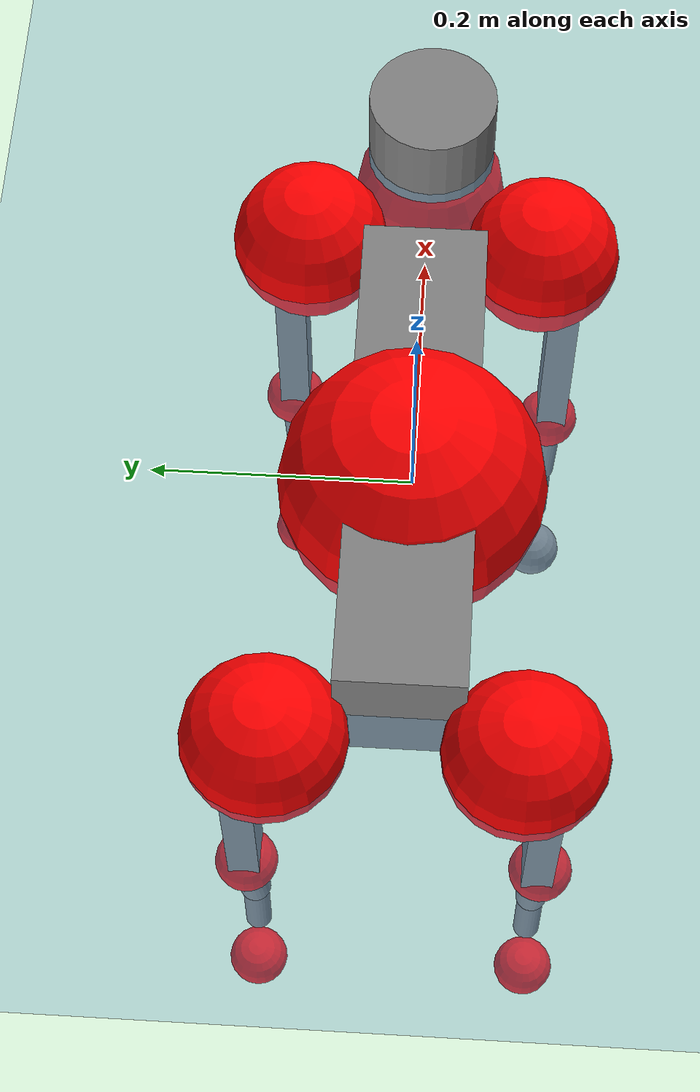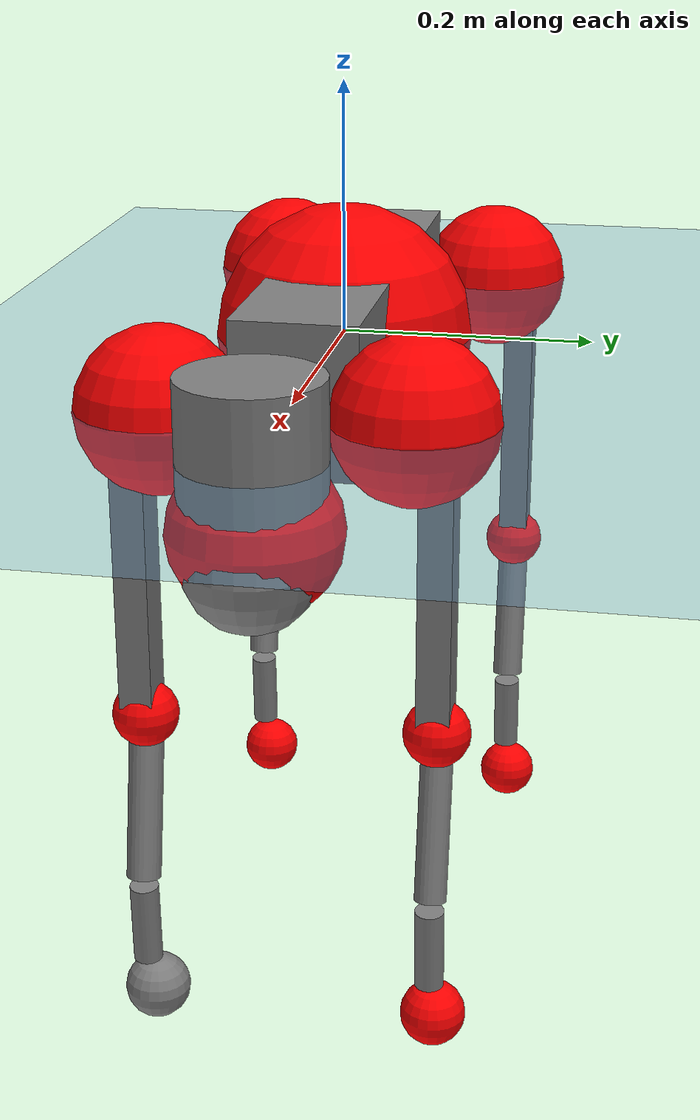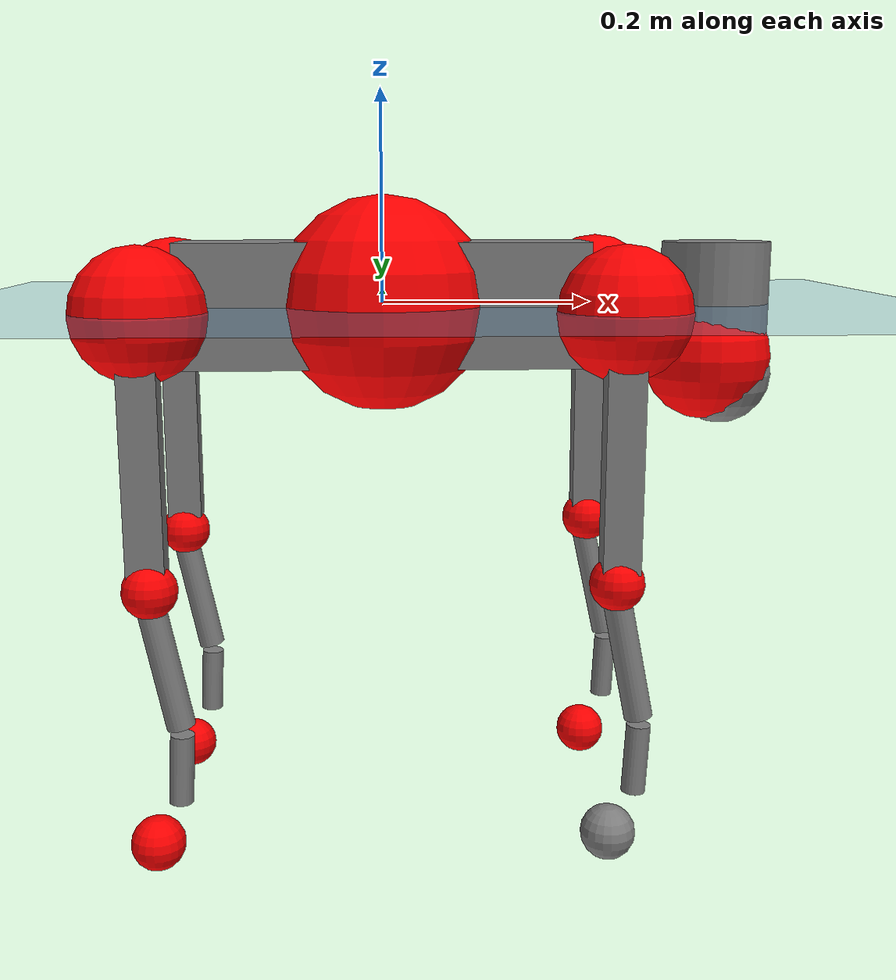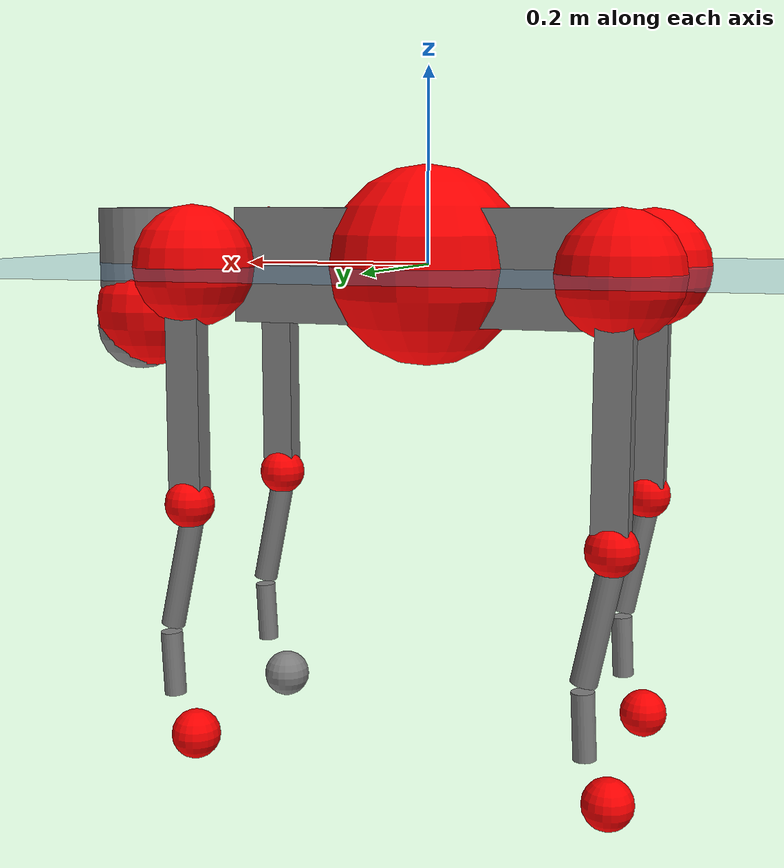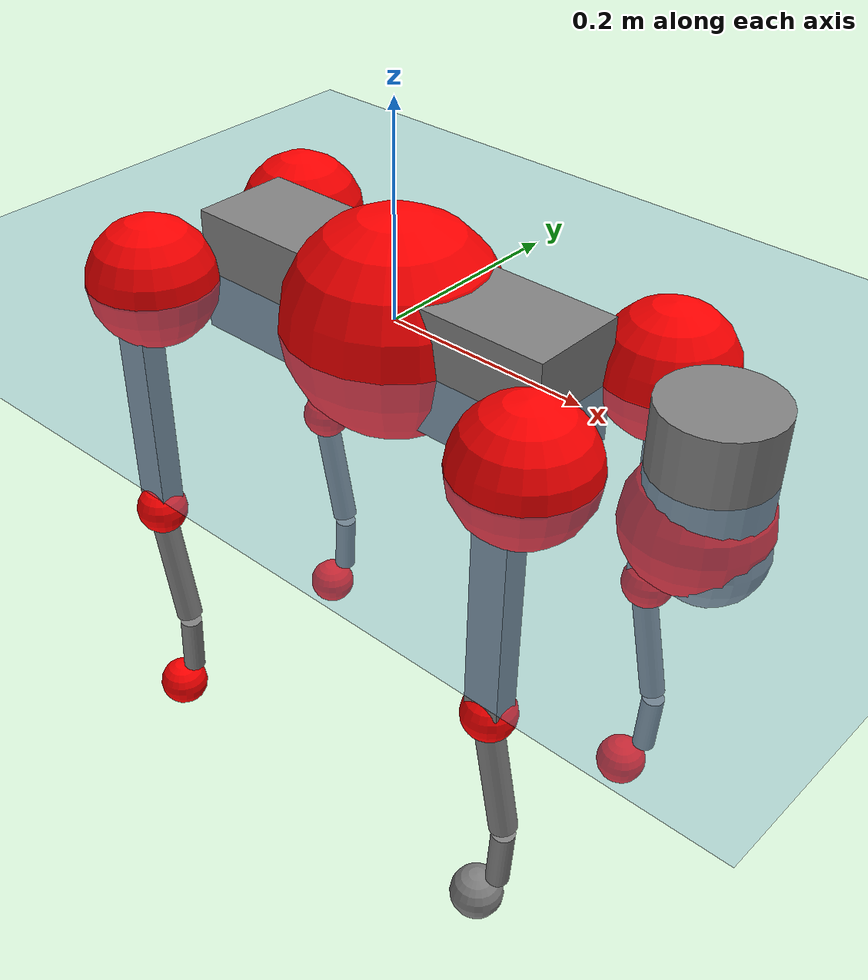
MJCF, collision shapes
<mujoco model="go2">
  <compiler angle="radian" assetdir="assets" balanceinertia="true" inertiafromgeom="false"/>

  <option timestep="0.005" density="1.2" viscosity="2e-05"/>

  <size nkey="1"/>

  <visual>
    <quality shadowsize="8192"/>
    <map shadowclip="0.5"/>
  </visual>

  <default>
    <default class="/">
      <geom contype="0" conaffinity="0" group="1" solref="-1000 -80"/>
      <site size="0.01 0.005 0.005" group="5"/>
      <general forcelimited="true" biastype="affine" gainprm="20" biasprm="0 -20 -0.5"/>
      <default class="go2">
        <joint armature="0.01" damping="0.01" frictionloss="0.2"/>
        <geom condim="1" margin="0.001"/>
        <default class="visual">
          <geom type="mesh" group="2"/>
        </default>
        <default class="collision">
          <geom group="3"/>
          <default class="foot">
            <geom size="0.022 0 0" condim="6" priority="1" friction="0.8 0.02 0.01" solimp="0.015 1 0.022"/>
          </default>
        </default>
        <default class="reward_collision_sphere">
          <geom group="5" rgba="1 0 0 1"/>
        </default>
      </default>
    </default>
  </default>

  <asset>
    <texture type="skybox" colorspace="auto" name="//unnamed_texture_0" builtin="gradient" rgb1="0.95 0.95 0.95" rgb2="0.95 0.95 0.95" width="100" height="600"/>
    <texture type="2d" colorspace="auto" name="texplane" builtin="checker" rgb1="0.345 0.575 0.748" rgb2="0.345 0.575 0.748" markrgb="1 1 1" width="512" height="512"/>
    <material name="MatPlane" class="/" texture="texplane" texuniform="true" texrepeat="2 2" specular="0.9"/>
    <material name="metal" class="/" rgba="0.9 0.95 0.95 1"/>
    <material name="black" class="/" rgba="0 0 0 1"/>
    <material name="white" class="/"/>
    <material name="gray" class="/" rgba="0.671705 0.692426 0.77427 1"/>
    <mesh name="base_0" class="/" file="base_0.obj"/>
    <mesh name="base_1" class="/" file="base_1.obj"/>
    <mesh name="base_2" class="/" file="base_2.obj"/>
    <mesh name="base_3" class="/" file="base_3.obj"/>
    <mesh name="base_4" class="/" file="base_4.obj"/>
    <mesh name="hip_0" class="/" file="hip_0.obj"/>
    <mesh name="hip_1" class="/" file="hip_1.obj"/>
    <mesh name="thigh_0" class="/" file="thigh_0.obj"/>
    <mesh name="thigh_1" class="/" file="thigh_1.obj"/>
    <mesh name="thigh_mirror_0" class="/" file="thigh_mirror_0.obj"/>
    <mesh name="thigh_mirror_1" class="/" file="thigh_mirror_1.obj"/>
    <mesh name="calf_0" class="/" file="calf_0.obj"/>
    <mesh name="calf_1" class="/" file="calf_1.obj"/>
    <mesh name="calf_mirror_0" class="/" file="calf_mirror_0.obj"/>
    <mesh name="calf_mirror_1" class="/" file="calf_mirror_1.obj"/>
    <mesh name="foot" class="/" file="foot.obj"/>
  </asset>

  <worldbody>
    <geom name="floor" class="/" size="100 100 0.125" type="plane" group="0" material="MatPlane"/>
    <light name="toplight_shadow" class="/" pos="0 0 5" dir="0.0990148 0.0990148 -0.990148" type="directional" ambient="0.04 0.04 0.04" diffuse="0.55 0.55 0.55" specular="0.12 0.12 0.12"/>
    <light name="toplight_fill" class="/" pos="0 0 5" dir="0.0990148 0.0990148 -0.990148" type="directional" castshadow="false" ambient="0.04 0.04 0.04" diffuse="0.3 0.3 0.3" specular="0.08 0.08 0.08"/>
    <body name="trunk" childclass="go2" pos="0.000867779 8.38414e-06 -0.000621595" quat="1 -0.000490788 -0.00039111 -6.13572e-05">
      <inertial pos="0.023974 0.00138797 -0.00394533" quat="-0.00801779 0.715947 -0.0118062 0.698009" mass="7.88368" diaginertia="0.199877 0.0340382 0.0511626"/>
      <joint name="//unnamed_joint_0" type="free" armature="0" damping="0" frictionloss="0"/>
      <geom name="//unnamed_geom_1" class="visual" material="black" mesh="base_0"/>
      <geom name="//unnamed_geom_2" class="visual" material="black" mesh="base_1"/>
      <geom name="//unnamed_geom_3" class="visual" material="black" mesh="base_2"/>
      <geom name="//unnamed_geom_4" class="visual" material="white" mesh="base_3"/>
      <geom name="//unnamed_geom_5" class="visual" material="gray" mesh="base_4"/>
      <geom name="trunk_1" class="collision" size="0.194865 0.0484314 0.0590501" type="box"/>
      <geom name="trunk_2" class="collision" size="0.0517983 0.0466185" pos="0.322154 0 0.0116609" type="cylinder"/>
      <geom name="trunk_3" class="collision" size="0.0486904" pos="0.331197 0 -0.0699657"/>
      <geom name="//unnamed_geom_9" class="reward_collision_sphere" size="0.103597"/>
      <geom name="//unnamed_geom_10" class="reward_collision_sphere" size="0.062158" pos="0.316502 0 -0.0524742"/>
      <site name="imu" pos="-0.0126008 -0.00837179 0.0423146" size="0.0103597"/>
      <camera name="track" pos="0 -1.62288 0" quat="0.707107 0.707107 0 0" mode="trackcom"/>
      <camera name="ego_camera" pos="0.352674 0 0.0524742" quat="-0.5 -0.5 0.5 0.5"/>
      <body name="FL_hip" pos="0.219893 0.0363185 0.000695348" quat="1 -0.000904592 -0.00018961 -6.51871e-05">
        <inertial pos="-0.00772362 -6.42527e-05 -0.000934407" quat="0.500685 0.493559 0.505207 0.50048" mass="0.77388" diaginertia="0.00168171 0.000212706 0.00107251"/>
        <joint name="FL_hip_joint" pos="0 0 0" axis="0.999998 -0.00177819 -0.00134642" range="-1.06348 1.08297" armature="0.00903457" damping="0.027462" frictionloss="0.185227"/>
        <geom name="//unnamed_geom_11" class="visual" material="metal" mesh="hip_0"/>
        <geom name="//unnamed_geom_12" class="visual" material="gray" mesh="hip_1"/>
        <geom name="//unnamed_geom_13" class="collision" size="0.0476545 0.0207193" pos="0 0.0649153 0" quat="0.707107 0.707107 0 0" type="cylinder"/>
        <geom name="//unnamed_geom_14" class="reward_collision_sphere" size="0.062158" pos="0 0.0568009 0"/>
        <body name="FL_thigh" pos="0.000473198 0.0745809 0.00211223" quat="0.999999 0.000811657 -0.00119448 7.91139e-05">
          <inertial pos="-0.00196592 -0.0175445 -0.0399111" quat="0.833686 0.0812222 -0.0301969 0.545398" mass="1.30766" diaginertia="0.0112894 0.00206886 0.0018536"/>
          <joint name="FL_thigh_joint" pos="0 0 0" axis="0.00122162 0.999822 -0.0188136" stiffness="0.0113042" range="-1.61975 3.54838" armature="0.0113173" damping="0" frictionloss="0.221847"/>
          <geom name="//unnamed_geom_15" class="visual" material="metal" mesh="thigh_0"/>
          <geom name="//unnamed_geom_16" class="visual" material="gray" mesh="thigh_1"/>
          <geom name="//unnamed_geom_17" class="collision" size="0.11033 0.0126906 0.0176114" pos="0 0 -0.124189" quat="0.707107 0 0.707107 0" type="box"/>
          <body name="FL_calf" pos="-0.000540739 0.00117995 -0.245241" quat="1 1.28474e-05 -0.000113224 0.000165599">
            <inertial pos="0.0045409 -0.000164818 -0.167252" quat="0.705454 0.0109793 0.000271953 0.708671" mass="0.263119" diaginertia="0.00268496 0.000516878 0.000108685"/>
            <joint name="FL_calf_joint" pos="0 0 0" axis="-0.015794 0.99823 0.0573341" stiffness="0.00332536" range="-2.74178 -0.787324" armature="0.0113742" damping="0.0170991" frictionloss="0.219099"/>
            <geom name="//unnamed_geom_18" class="visual" material="gray" mesh="calf_0"/>
            <geom name="//unnamed_geom_19" class="visual" material="black" mesh="calf_1"/>
            <geom name="FL_calf0" class="collision" size="0.0124316 0.062158" pos="0.00904291 0 -0.0699657" quat="0.994493 0 -0.104807 0" type="cylinder"/>
            <geom name="//unnamed_geom_21" class="collision" size="0.0113956 0.0336689" pos="0.0226073 0 -0.172582" quat="0.999688 0 0.0249974 0" type="cylinder"/>
            <geom name="//unnamed_geom_22" class="visual" pos="0 0 -0.248378" quat="1 0 0 0" material="black" mesh="foot"/>
            <geom name="FL_foot" class="foot" size="0.0157715" pos="-0.00226073 0 -0.248378"/>
            <geom name="//unnamed_geom_24" class="reward_collision_sphere" size="0.0258992"/>
            <geom name="//unnamed_geom_25" class="reward_collision_sphere" size="0.0258992" pos="-0.00226073 0 -0.248378"/>
            <site name="FL_foot" class="foot" pos="-0.00226073 0 -0.248378" size="0.0103597"/>
          </body>
        </body>
      </body>
      <body name="FR_hip" pos="0.217827 -0.0369788 -0.00298057" quat="1 -8.10034e-05 5.10322e-05 -0.000158464">
        <inertial pos="-0.00734432 -0.00247052 0.000159412" quat="0.501967 0.503763 0.498344 0.495887" mass="0.740972" diaginertia="0.00160848 0.00021715 0.00105618"/>
        <joint name="FR_hip_joint" pos="0 0 0" axis="0.999932 0.00220104 -0.0114866" range="-1.01393 1.08278" armature="0.0110403" damping="0" frictionloss="0.222887"/>
        <geom name="//unnamed_geom_26" class="visual" pos="0 -3.08959e-09 -1.32519e-07" quat="4.63268e-05 1 0 0" material="metal" mesh="hip_0"/>
        <geom name="//unnamed_geom_27" class="visual" pos="0 -5.0086e-09 3.2777e-07" quat="4.63268e-05 1 0 0" material="gray" mesh="hip_1"/>
        <geom name="//unnamed_geom_28" class="collision" size="0.0476545 0.0207193" pos="0 -0.0649153 0" quat="0.707107 0.707107 0 0" type="cylinder"/>
        <geom name="//unnamed_geom_29" class="reward_collision_sphere" size="0.062158" pos="0 -0.0568009 0"/>
        <body name="FR_thigh" pos="-0.00227408 -0.0796716 -0.00110145" quat="0.999999 -0.000964158 0.000296691 0.00018349">
          <inertial pos="-0.00434999 0.0198575 -0.0389978" quat="0.550846 -0.0156203 0.0814165 0.830479" mass="1.31862" diaginertia="0.0111141 0.00208502 0.00194765"/>
          <joint name="FR_thigh_joint" pos="0 0 0" axis="0.00326466 -0.99999 0.00294295" range="-3.55298 1.58659" armature="0.0100377" damping="0.0071486" frictionloss="0.164087"/>
          <geom name="//unnamed_geom_30" class="visual" material="metal" mesh="thigh_mirror_0"/>
          <geom name="//unnamed_geom_31" class="visual" material="gray" mesh="thigh_mirror_1"/>
          <geom name="//unnamed_geom_32" class="collision" size="0.11033 0.0126906 0.0176114" pos="0 0 -0.124189" quat="0.707107 0 0.707107 0" type="box"/>
          <body name="FR_calf" pos="-0.00152753 0.00236337 -0.245762" quat="1 -6.86691e-05 0.000113122 -0.000100038">
            <inertial pos="0.00794164 0.000759466 -0.166984" quat="0.701543 -0.00139452 0.00797351 0.712581" mass="0.261168" diaginertia="0.00284201 0.000515598 0.000114329"/>
            <joint name="FR_calf_joint" pos="0 0 0" axis="0.000315858 -1 0.000101605" stiffness="0.00511844" range="0.808295 2.74293" armature="0.00898509" damping="0.0174354" frictionloss="0.235404"/>
            <geom name="//unnamed_geom_33" class="visual" material="gray" mesh="calf_mirror_0"/>
            <geom name="//unnamed_geom_34" class="visual" material="black" mesh="calf_mirror_1"/>
            <geom name="FR_calf0" class="collision" size="0.0134676 0.062158" pos="0.0113036 0 -0.0699657" quat="0.995004 0 -0.0998334 0" type="cylinder"/>
            <geom name="//unnamed_geom_36" class="collision" size="0.0113956 0.0336689" pos="0.0226073 0 -0.172582" quat="0.999688 0 0.0249974 0" type="cylinder"/>
            <geom name="//unnamed_geom_37" class="visual" pos="0 0 -0.248378" quat="1 0 0 0" material="black" mesh="foot"/>
            <geom name="FR_foot" class="foot" size="0.0263425" pos="-0.00226073 0 -0.248378"/>
            <geom name="//unnamed_geom_39" class="reward_collision_sphere" size="0.0258992"/>
            <geom name="//unnamed_geom_40" class="reward_collision_sphere" size="0.0258992" pos="-0.00226073 0 -0.248378"/>
            <site name="FR_foot" class="foot" pos="-0.00226073 0 -0.248378" size="0.0103597"/>
          </body>
        </body>
      </body>
      <body name="RL_hip" pos="-0.215565 0.0398101 -0.00153358" quat="0.999999 -4.62347e-05 -2.84736e-05 0.00133233">
        <inertial pos="0.00830584 -0.000233683 0.000361641" quat="0.509358 0.500375 0.492391 0.497726" mass="0.764107" diaginertia="0.00159748 0.000204702 0.00106585"/>
        <joint name="RL_hip_joint" pos="0 0 0" axis="-0.999981 -0.00548843 0.00280841" range="-0.995104 1.12948" armature="0.0112845" damping="0" frictionloss="0.209313"/>
        <geom name="//unnamed_geom_41" class="visual" pos="3.11267e-10 0 6.10156e-08" quat="4.63268e-05 0 1 0" material="metal" mesh="hip_0"/>
        <geom name="//unnamed_geom_42" class="visual" pos="5.04602e-10 0 5.41122e-08" quat="4.63268e-05 0 1 0" material="gray" mesh="hip_1"/>
        <geom name="//unnamed_geom_43" class="collision" size="0.0476545 0.0207193" pos="0 0.0649153 0" quat="0.707107 0.707107 0 0" type="cylinder"/>
        <geom name="//unnamed_geom_44" class="reward_collision_sphere" size="0.062158" pos="0 0.0568009 0"/>
        <body name="RL_thigh" pos="-0.00112061 0.081139 -0.00278985" quat="1 8.56127e-06 -5.28451e-07 2.82034e-05">
          <inertial pos="-0.00399961 -0.0185189 -0.0398878" quat="0.828787 0.0830819 -0.0176511 0.55308" mass="1.27521" diaginertia="0.010891 0.00201524 0.00195244"/>
          <joint name="RL_thigh_joint" pos="0 0 0" axis="0.00222808 0.999958 0.00890101" stiffness="0.00120722" range="-0.536427 4.51003" armature="0.00934188" damping="0" frictionloss="0.234233"/>
          <geom name="//unnamed_geom_45" class="visual" material="metal" mesh="thigh_0"/>
          <geom name="//unnamed_geom_46" class="visual" material="gray" mesh="thigh_1"/>
          <geom name="//unnamed_geom_47" class="collision" size="0.11033 0.0126906 0.0176114" pos="0 0 -0.124189" quat="0.707107 0 0.707107 0" type="box"/>
          <body name="RL_calf" pos="-0.00111291 -0.000204181 -0.25109" quat="0.999999 0.000812154 -0.000341261 0.000681128">
            <inertial pos="0.00718381 -7.96501e-05 -0.164781" quat="0.710544 0.0173022 0.00802175 0.703395" mass="0.266141" diaginertia="0.0027357 0.000518921 0.000118188"/>
            <joint name="RL_calf_joint" pos="0 0 0" axis="-1.80455e-06 1 -1.84911e-05" stiffness="0.00464275" range="-2.71357 -0.839412" armature="0.0103983" damping="0" frictionloss="0.217278"/>
            <geom name="//unnamed_geom_48" class="visual" material="gray" mesh="calf_0"/>
            <geom name="//unnamed_geom_49" class="visual" material="black" mesh="calf_1"/>
            <geom name="RL_calf0" class="collision" size="0.0134676 0.062158" pos="0.0113036 0 -0.0699657" quat="0.995004 0 -0.0998334 0" type="cylinder"/>
            <geom name="//unnamed_geom_51" class="collision" size="0.0113956 0.0336689" pos="0.0226073 0 -0.172582" quat="0.999688 0 0.0249974 0" type="cylinder"/>
            <geom name="//unnamed_geom_52" class="visual" pos="0 0 -0.248378" quat="1 0 0 0" material="black" mesh="foot"/>
            <geom name="RL_foot" class="foot" size="0.0169968" pos="-0.00226073 0 -0.248378"/>
            <geom name="//unnamed_geom_54" class="reward_collision_sphere" size="0.0258992"/>
            <geom name="//unnamed_geom_55" class="reward_collision_sphere" size="0.0258992" pos="-0.00226073 0 -0.248378"/>
            <site name="RL_foot" class="foot" pos="-0.00226073 0 -0.248378" size="0.0103597"/>
          </body>
        </body>
      </body>
      <body name="RR_hip" pos="-0.217844 -0.0360821 -0.0026643" quat="1 -9.92437e-06 1.97048e-05 3.64737e-05">
        <inertial pos="0.00815197 -0.000870919 -0.00121078" quat="0.493804 0.505701 0.49106 0.509199" mass="0.737075" diaginertia="0.00157403 0.000203771 0.00104372"/>
        <joint name="RR_hip_joint" pos="0 0 0" axis="-1 -0.000842958 -0.000124075" range="-1.02951 0.984769" armature="0.0108009" damping="0.0126993" frictionloss="0.20138"/>
        <geom name="//unnamed_geom_56" class="visual" pos="-3.22309e-10 -3.08959e-09 1.93535e-07" quat="2.14617e-09 4.63268e-05 4.63268e-05 -1" material="metal" mesh="hip_0"/>
        <geom name="//unnamed_geom_57" class="visual" pos="-4.77293e-10 -5.0086e-09 -2.73658e-07" quat="2.14617e-09 4.63268e-05 4.63268e-05 -1" material="gray" mesh="hip_1"/>
        <geom name="//unnamed_geom_58" class="collision" size="0.0476545 0.0207193" pos="0 -0.0649153 0" quat="0.707107 0.707107 0 0" type="cylinder"/>
        <geom name="//unnamed_geom_59" class="reward_collision_sphere" size="0.062158" pos="0 -0.0568009 0"/>
        <body name="RR_thigh" pos="0.00138296 -0.0796187 -0.00244739" quat="1 3.59479e-06 1.40205e-07 -1.76208e-06">
          <inertial pos="-0.00370509 0.0159139 -0.0359965" quat="0.551834 -0.0194505 0.084468 0.829437" mass="1.38888" diaginertia="0.0116407 0.00214194 0.00204332"/>
          <joint name="RR_thigh_joint" pos="0 0 0" axis="-0.00102619 -0.999999 -0.00102366" range="-4.53865 0.517257" armature="0.00909367" damping="0" frictionloss="0.199261"/>
          <geom name="//unnamed_geom_60" class="visual" material="metal" mesh="thigh_mirror_0"/>
          <geom name="//unnamed_geom_61" class="visual" material="gray" mesh="thigh_mirror_1"/>
          <geom name="//unnamed_geom_62" class="collision" size="0.11033 0.0126906 0.0176114" pos="0 0 -0.124189" quat="0.707107 0 0.707107 0" type="box"/>
          <body name="RR_calf" pos="0.00200938 -0.0032496 -0.245296" quat="1 -9.46268e-05 0.00095276 0.000205197">
            <inertial pos="0.00447983 0.000308056 -0.164969" quat="0.703043 -0.00714136 -0.00181159 0.711109" mass="0.275102" diaginertia="0.00271447 0.000514575 0.000115124"/>
            <joint name="RR_calf_joint" pos="0 0 0" axis="0.00282171 -0.999995 0.00171492" range="0.797097 2.6738" armature="0.0117659" damping="0.0258322" frictionloss="0.205087"/>
            <geom name="//unnamed_geom_63" class="visual" material="gray" mesh="calf_mirror_0"/>
            <geom name="//unnamed_geom_64" class="visual" material="black" mesh="calf_mirror_1"/>
            <geom name="RR_calf0" class="collision" size="0.0134676 0.062158" pos="0.0113036 0 -0.0699657" quat="0.995004 0 -0.0998334 0" type="cylinder"/>
            <geom name="//unnamed_geom_66" class="collision" size="0.0113956 0.0336689" pos="0.0226073 0 -0.172582" quat="0.999688 0 0.0249974 0" type="cylinder"/>
            <geom name="//unnamed_geom_67" class="visual" pos="0 0 -0.248378" quat="1 0 0 0" material="black" mesh="foot"/>
            <geom name="RR_foot" class="foot" size="0.0220138" pos="-0.00226073 0 -0.248378"/>
            <geom name="//unnamed_geom_69" class="reward_collision_sphere" size="0.0258992"/>
            <geom name="//unnamed_geom_70" class="reward_collision_sphere" size="0.0258992" pos="-0.00226073 0 -0.248378"/>
            <site name="RR_foot" class="foot" pos="-0.00226073 0 -0.248378" size="0.0103597"/>
          </body>
        </body>
      </body>
    </body>
  </worldbody>

  <contact>
    <pair class="/" geom1="floor" geom2="FL_foot" name="//unnamed_contact_0"/>
    <pair class="/" geom1="floor" geom2="FR_foot" name="//unnamed_contact_1"/>
    <pair class="/" geom1="floor" geom2="RL_foot" name="//unnamed_contact_2"/>
    <pair class="/" geom1="floor" geom2="RR_foot" name="//unnamed_contact_3"/>
  </contact>

  <actuator>
    <general name="FL_hip" class="/" joint="FL_hip_joint" forcerange="-22.6795 22.6795" gainprm="22.1255" biasprm="0 -22.1255 -0.483164"/>
    <general name="FL_thigh" class="/" joint="FL_thigh_joint" forcerange="-23.0915 23.0915" gainprm="22.1255" biasprm="0 -22.1255 -0.483164"/>
    <general name="FL_calf" class="/" joint="FL_calf_joint" forcerange="-42.3417 42.3417" gainprm="22.1255" biasprm="0 -22.1255 -0.483164"/>
    <general name="FR_hip" class="/" joint="FR_hip_joint" forcerange="-23.3694 23.3694" gainprm="22.1255" biasprm="0 -22.1255 -0.483164"/>
    <general name="FR_thigh" class="/" joint="FR_thigh_joint" forcerange="-26.527 26.527" gainprm="22.1255" biasprm="0 -22.1255 -0.483164"/>
    <general name="FR_calf" class="/" joint="FR_calf_joint" forcerange="-49.0814 49.0814" gainprm="22.1255" biasprm="0 -22.1255 -0.483164"/>
    <general name="RL_hip" class="/" joint="RL_hip_joint" forcerange="-24.3899 24.3899" gainprm="22.1255" biasprm="0 -22.1255 -0.483164"/>
    <general name="RL_thigh" class="/" joint="RL_thigh_joint" forcerange="-25.9242 25.9242" gainprm="22.1255" biasprm="0 -22.1255 -0.483164"/>
    <general name="RL_calf" class="/" joint="RL_calf_joint" forcerange="-42.6243 42.6243" gainprm="22.1255" biasprm="0 -22.1255 -0.483164"/>
    <general name="RR_hip" class="/" joint="RR_hip_joint" forcerange="-22.1275 22.1275" gainprm="22.1255" biasprm="0 -22.1255 -0.483164"/>
    <general name="RR_thigh" class="/" joint="RR_thigh_joint" forcerange="-26.9549 26.9549" gainprm="22.1255" biasprm="0 -22.1255 -0.483164"/>
    <general name="RR_calf" class="/" joint="RR_calf_joint" forcerange="-45.5094 45.5094" gainprm="22.1255" biasprm="0 -22.1255 -0.483164"/>
  </actuator>

  <sensor>
    <gyro site="imu" name="imu_angular_velocity"/>
    <velocimeter site="imu" name="imu_linear_velocity"/>
    <framelinvel objtype="site" objname="FL_foot" name="FL_foot_global_linear_velocity"/>
    <framelinvel objtype="site" objname="FR_foot" name="FR_foot_global_linear_velocity"/>
    <framelinvel objtype="site" objname="RL_foot" name="RL_foot_global_linear_velocity"/>
    <framelinvel objtype="site" objname="RR_foot" name="RR_foot_global_linear_velocity"/>
  </sensor>

  <keyframe>
    <key name="home" qpos="0 0 0.325 1 0 0 0 0.1 0.8 -1.5 -0.1 -0.8 1.5 -0.1 0.8 -1.5 0.1 -0.8 1.5"/>
  </keyframe>
</mujoco>
